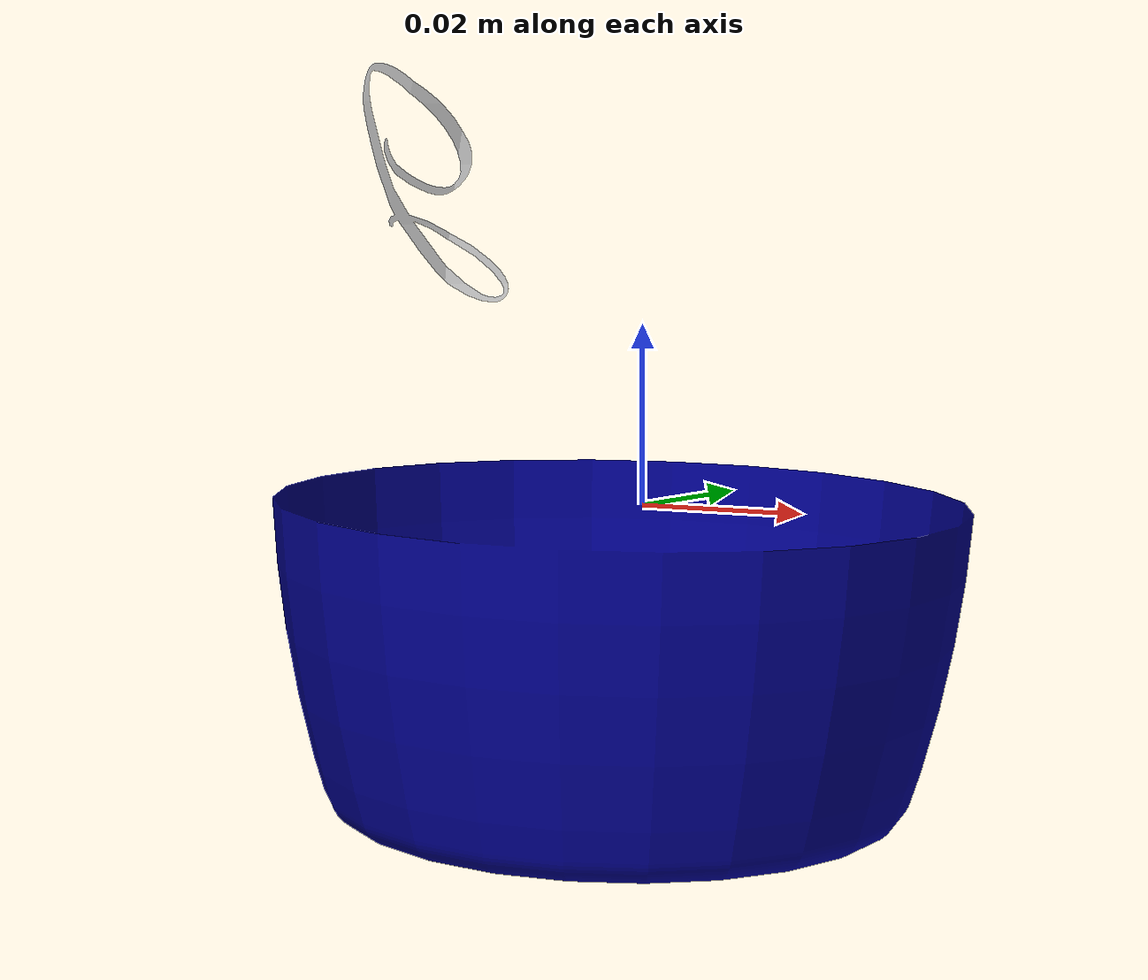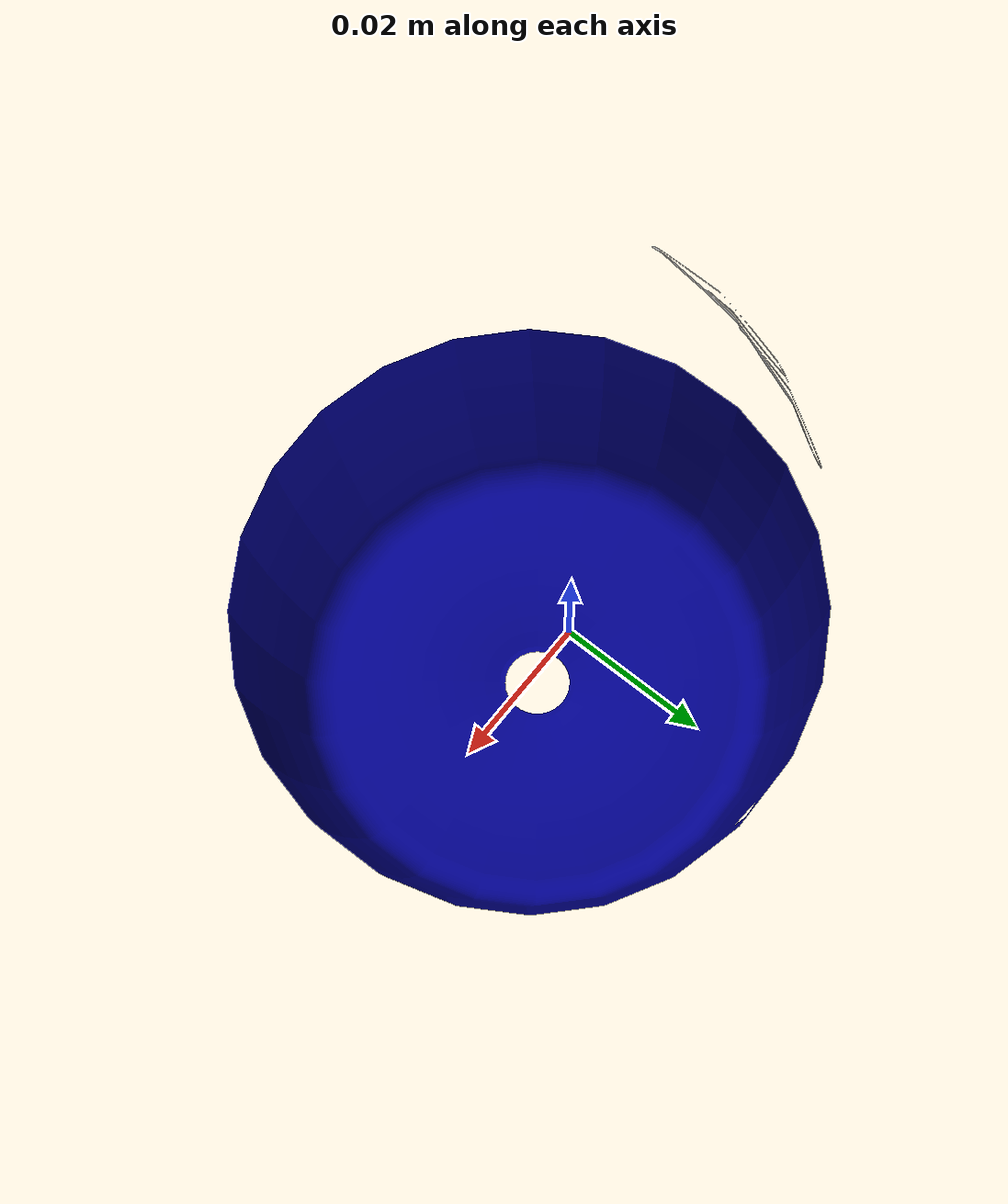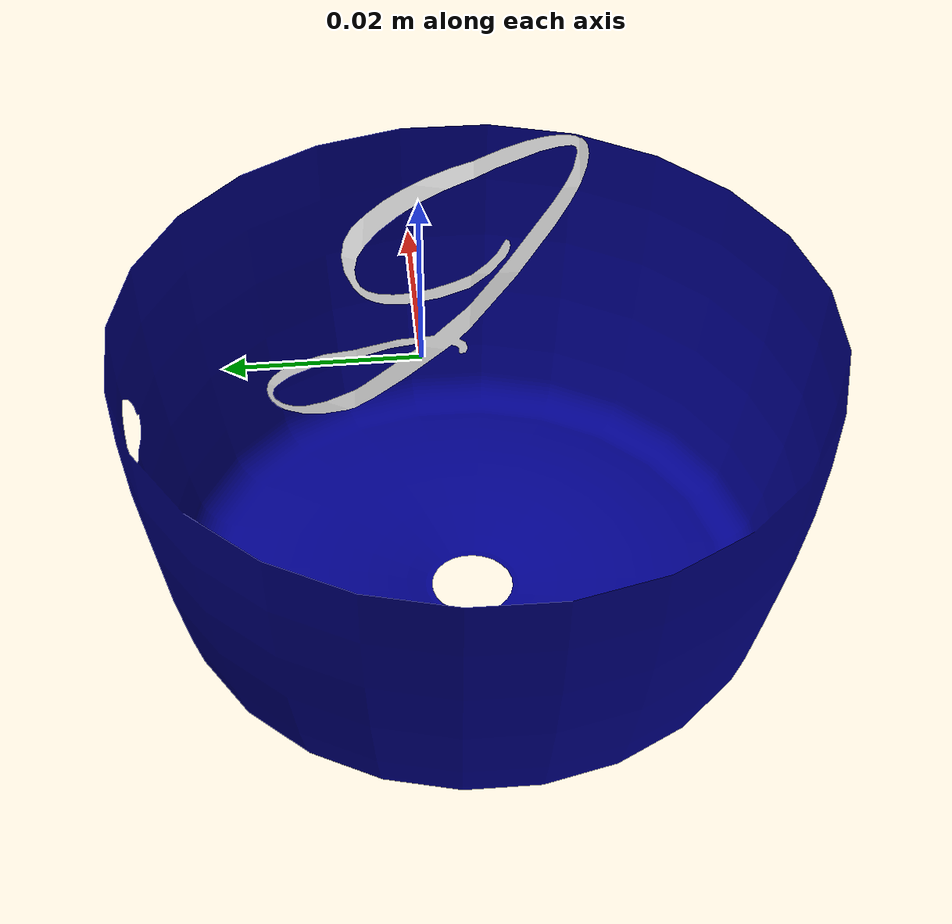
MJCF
<mujoco model="e94e46bc">
  <asset>
  <texture file="../../../textures/ceramic.png" name="tex-e94e46bc" type="2d" />
  <material name="e94e46bc" reflectance="0.5" texrepeat="1 1" texture="tex-e94e46bc" texuniform="false" />
  <mesh file="visual/model_normalized_0.obj" name="model_normalized_0_vis" scale="0.15 0.15 0.15" /><mesh file="visual/model_normalized_1.obj" name="model_normalized_1_vis" scale="0.15 0.15 0.15" /><mesh file="collision/model_normalized_collision_13.obj" name="model_normalized_collision_13._coll" scale="0.15 0.15 0.15" /><mesh file="collision/model_normalized_collision_16.obj" name="model_normalized_collision_16._coll" scale="0.15 0.15 0.15" /><mesh file="collision/model_normalized_collision_30.obj" name="model_normalized_collision_30._coll" scale="0.15 0.15 0.15" /><mesh file="collision/model_normalized_collision_21.obj" name="model_normalized_collision_21._coll" scale="0.15 0.15 0.15" /><mesh file="collision/model_normalized_collision_1.obj" name="model_normalized_collision_1._coll" scale="0.15 0.15 0.15" /><mesh file="collision/model_normalized_collision_20.obj" name="model_normalized_collision_20._coll" scale="0.15 0.15 0.15" /><mesh file="collision/model_normalized_collision_27.obj" name="model_normalized_collision_27._coll" scale="0.15 0.15 0.15" /><mesh file="collision/model_normalized_collision_10.obj" name="model_normalized_collision_10._coll" scale="0.15 0.15 0.15" /><mesh file="collision/model_normalized_collision_24.obj" name="model_normalized_collision_24._coll" scale="0.15 0.15 0.15" /><mesh file="collision/model_normalized_collision_28.obj" name="model_normalized_collision_28._coll" scale="0.15 0.15 0.15" /><mesh file="collision/model_normalized_collision_25.obj" name="model_normalized_collision_25._coll" scale="0.15 0.15 0.15" /><mesh file="collision/model_normalized_collision_23.obj" name="model_normalized_collision_23._coll" scale="0.15 0.15 0.15" /><mesh file="collision/model_normalized_collision_6.obj" name="model_normalized_collision_6._coll" scale="0.15 0.15 0.15" /><mesh file="collision/model_normalized_collision_8.obj" name="model_normalized_collision_8._coll" scale="0.15 0.15 0.15" /><mesh file="collision/model_normalized_collision_2.obj" name="model_normalized_collision_2._coll" scale="0.15 0.15 0.15" /><mesh file="collision/model_normalized_collision_12.obj" name="model_normalized_collision_12._coll" scale="0.15 0.15 0.15" /><mesh file="collision/model_normalized_collision_4.obj" name="model_normalized_collision_4._coll" scale="0.15 0.15 0.15" /><mesh file="collision/model_normalized_collision_19.obj" name="model_normalized_collision_19._coll" scale="0.15 0.15 0.15" /><mesh file="collision/model_normalized_collision_5.obj" name="model_normalized_collision_5._coll" scale="0.15 0.15 0.15" /><mesh file="collision/model_normalized_collision_14.obj" name="model_normalized_collision_14._coll" scale="0.15 0.15 0.15" /><mesh file="collision/model_normalized_collision_11.obj" name="model_normalized_collision_11._coll" scale="0.15 0.15 0.15" /><mesh file="collision/model_normalized_collision_15.obj" name="model_normalized_collision_15._coll" scale="0.15 0.15 0.15" /><mesh file="collision/model_normalized_collision_18.obj" name="model_normalized_collision_18._coll" scale="0.15 0.15 0.15" /><mesh file="collision/model_normalized_collision_29.obj" name="model_normalized_collision_29._coll" scale="0.15 0.15 0.15" /><mesh file="collision/model_normalized_collision_26.obj" name="model_normalized_collision_26._coll" scale="0.15 0.15 0.15" /><mesh file="collision/model_normalized_collision_17.obj" name="model_normalized_collision_17._coll" scale="0.15 0.15 0.15" /><mesh file="collision/model_normalized_collision_31.obj" name="model_normalized_collision_31._coll" scale="0.15 0.15 0.15" /><mesh file="collision/model_normalized_collision_3.obj" name="model_normalized_collision_3._coll" scale="0.15 0.15 0.15" /><mesh file="collision/model_normalized_collision_9.obj" name="model_normalized_collision_9._coll" scale="0.15 0.15 0.15" /><mesh file="collision/model_normalized_collision_22.obj" name="model_normalized_collision_22._coll" scale="0.15 0.15 0.15" /><mesh file="collision/model_normalized_collision_7.obj" name="model_normalized_collision_7._coll" scale="0.15 0.15 0.15" /><mesh file="collision/model_normalized_collision_0.obj" name="model_normalized_collision_0._coll" scale="0.15 0.15 0.15" /><material name="material_0_24" specular="0.4000000000000001" shininess="0.01" rgba="0 0 0.545098 1.0" /><material name="material_1_24" specular="0.4000000000000001" shininess="0.01" rgba="1 1 1 1.0" /></asset>
  <worldbody>
    <body>
      <body name="object">
      <geom solimp="0.998 0.998 0.001" solref="0.001 1" density="100" friction="0.95 0.3 0.1" type="mesh" mesh="model_normalized_0_vis" conaffinity="0" contype="0" group="1" material="material_1_24" /><geom solimp="0.998 0.998 0.001" solref="0.001 1" density="100" friction="0.95 0.3 0.1" type="mesh" mesh="model_normalized_1_vis" conaffinity="0" contype="0" group="1" material="material_0_24" /><geom solimp="0.998 0.998 0.001" solref="0.001 1" density="100" friction="0.95 0.3 0.1" type="mesh" mesh="model_normalized_collision_13._coll" group="0" rgba="0.8 0.8 0.8 0.0" /><geom solimp="0.998 0.998 0.001" solref="0.001 1" density="100" friction="0.95 0.3 0.1" type="mesh" mesh="model_normalized_collision_16._coll" group="0" rgba="0.8 0.8 0.8 0.0" /><geom solimp="0.998 0.998 0.001" solref="0.001 1" density="100" friction="0.95 0.3 0.1" type="mesh" mesh="model_normalized_collision_30._coll" group="0" rgba="0.8 0.8 0.8 0.0" /><geom solimp="0.998 0.998 0.001" solref="0.001 1" density="100" friction="0.95 0.3 0.1" type="mesh" mesh="model_normalized_collision_21._coll" group="0" rgba="0.8 0.8 0.8 0.0" /><geom solimp="0.998 0.998 0.001" solref="0.001 1" density="100" friction="0.95 0.3 0.1" type="mesh" mesh="model_normalized_collision_1._coll" group="0" rgba="0.8 0.8 0.8 0.0" /><geom solimp="0.998 0.998 0.001" solref="0.001 1" density="100" friction="0.95 0.3 0.1" type="mesh" mesh="model_normalized_collision_20._coll" group="0" rgba="0.8 0.8 0.8 0.0" /><geom solimp="0.998 0.998 0.001" solref="0.001 1" density="100" friction="0.95 0.3 0.1" type="mesh" mesh="model_normalized_collision_27._coll" group="0" rgba="0.8 0.8 0.8 0.0" /><geom solimp="0.998 0.998 0.001" solref="0.001 1" density="100" friction="0.95 0.3 0.1" type="mesh" mesh="model_normalized_collision_10._coll" group="0" rgba="0.8 0.8 0.8 0.0" /><geom solimp="0.998 0.998 0.001" solref="0.001 1" density="100" friction="0.95 0.3 0.1" type="mesh" mesh="model_normalized_collision_24._coll" group="0" rgba="0.8 0.8 0.8 0.0" /><geom solimp="0.998 0.998 0.001" solref="0.001 1" density="100" friction="0.95 0.3 0.1" type="mesh" mesh="model_normalized_collision_28._coll" group="0" rgba="0.8 0.8 0.8 0.0" /><geom solimp="0.998 0.998 0.001" solref="0.001 1" density="100" friction="0.95 0.3 0.1" type="mesh" mesh="model_normalized_collision_25._coll" group="0" rgba="0.8 0.8 0.8 0.0" /><geom solimp="0.998 0.998 0.001" solref="0.001 1" density="100" friction="0.95 0.3 0.1" type="mesh" mesh="model_normalized_collision_23._coll" group="0" rgba="0.8 0.8 0.8 0.0" /><geom solimp="0.998 0.998 0.001" solref="0.001 1" density="100" friction="0.95 0.3 0.1" type="mesh" mesh="model_normalized_collision_6._coll" group="0" rgba="0.8 0.8 0.8 0.0" /><geom solimp="0.998 0.998 0.001" solref="0.001 1" density="100" friction="0.95 0.3 0.1" type="mesh" mesh="model_normalized_collision_8._coll" group="0" rgba="0.8 0.8 0.8 0.0" /><geom solimp="0.998 0.998 0.001" solref="0.001 1" density="100" friction="0.95 0.3 0.1" type="mesh" mesh="model_normalized_collision_2._coll" group="0" rgba="0.8 0.8 0.8 0.0" /><geom solimp="0.998 0.998 0.001" solref="0.001 1" density="100" friction="0.95 0.3 0.1" type="mesh" mesh="model_normalized_collision_12._coll" group="0" rgba="0.8 0.8 0.8 0.0" /><geom solimp="0.998 0.998 0.001" solref="0.001 1" density="100" friction="0.95 0.3 0.1" type="mesh" mesh="model_normalized_collision_4._coll" group="0" rgba="0.8 0.8 0.8 0.0" /><geom solimp="0.998 0.998 0.001" solref="0.001 1" density="100" friction="0.95 0.3 0.1" type="mesh" mesh="model_normalized_collision_19._coll" group="0" rgba="0.8 0.8 0.8 0.0" /><geom solimp="0.998 0.998 0.001" solref="0.001 1" density="100" friction="0.95 0.3 0.1" type="mesh" mesh="model_normalized_collision_5._coll" group="0" rgba="0.8 0.8 0.8 0.0" /><geom solimp="0.998 0.998 0.001" solref="0.001 1" density="100" friction="0.95 0.3 0.1" type="mesh" mesh="model_normalized_collision_14._coll" group="0" rgba="0.8 0.8 0.8 0.0" /><geom solimp="0.998 0.998 0.001" solref="0.001 1" density="100" friction="0.95 0.3 0.1" type="mesh" mesh="model_normalized_collision_11._coll" group="0" rgba="0.8 0.8 0.8 0.0" /><geom solimp="0.998 0.998 0.001" solref="0.001 1" density="100" friction="0.95 0.3 0.1" type="mesh" mesh="model_normalized_collision_15._coll" group="0" rgba="0.8 0.8 0.8 0.0" /><geom solimp="0.998 0.998 0.001" solref="0.001 1" density="100" friction="0.95 0.3 0.1" type="mesh" mesh="model_normalized_collision_18._coll" group="0" rgba="0.8 0.8 0.8 0.0" /><geom solimp="0.998 0.998 0.001" solref="0.001 1" density="100" friction="0.95 0.3 0.1" type="mesh" mesh="model_normalized_collision_29._coll" group="0" rgba="0.8 0.8 0.8 0.0" /><geom solimp="0.998 0.998 0.001" solref="0.001 1" density="100" friction="0.95 0.3 0.1" type="mesh" mesh="model_normalized_collision_26._coll" group="0" rgba="0.8 0.8 0.8 0.0" /><geom solimp="0.998 0.998 0.001" solref="0.001 1" density="100" friction="0.95 0.3 0.1" type="mesh" mesh="model_normalized_collision_17._coll" group="0" rgba="0.8 0.8 0.8 0.0" /><geom solimp="0.998 0.998 0.001" solref="0.001 1" density="100" friction="0.95 0.3 0.1" type="mesh" mesh="model_normalized_collision_31._coll" group="0" rgba="0.8 0.8 0.8 0.0" /><geom solimp="0.998 0.998 0.001" solref="0.001 1" density="100" friction="0.95 0.3 0.1" type="mesh" mesh="model_normalized_collision_3._coll" group="0" rgba="0.8 0.8 0.8 0.0" /><geom solimp="0.998 0.998 0.001" solref="0.001 1" density="100" friction="0.95 0.3 0.1" type="mesh" mesh="model_normalized_collision_9._coll" group="0" rgba="0.8 0.8 0.8 0.0" /><geom solimp="0.998 0.998 0.001" solref="0.001 1" density="100" friction="0.95 0.3 0.1" type="mesh" mesh="model_normalized_collision_22._coll" group="0" rgba="0.8 0.8 0.8 0.0" /><geom solimp="0.998 0.998 0.001" solref="0.001 1" density="100" friction="0.95 0.3 0.1" type="mesh" mesh="model_normalized_collision_7._coll" group="0" rgba="0.8 0.8 0.8 0.0" /><geom solimp="0.998 0.998 0.001" solref="0.001 1" density="100" friction="0.95 0.3 0.1" type="mesh" mesh="model_normalized_collision_0._coll" group="0" rgba="0.8 0.8 0.8 0.0" /></body>
      <site rgba="0 0 0 0" size="0.005" pos="0.00020460532499999988 -0.0006099321749999997 -0.031709249249999995" name="bottom_site" />
      <site rgba="0 0 0 0" size="0.005" pos="0.00020460532499999988 -0.0006099321749999997 0.04977824985" name="top_site" />
      <site rgba="0 0 0 0" size="0.005" pos="0.035445844649999995 0.050468679450000005 0.009034500299999998" name="horizontal_radius_site" />
    </body>
  </worldbody>
</mujoco>
